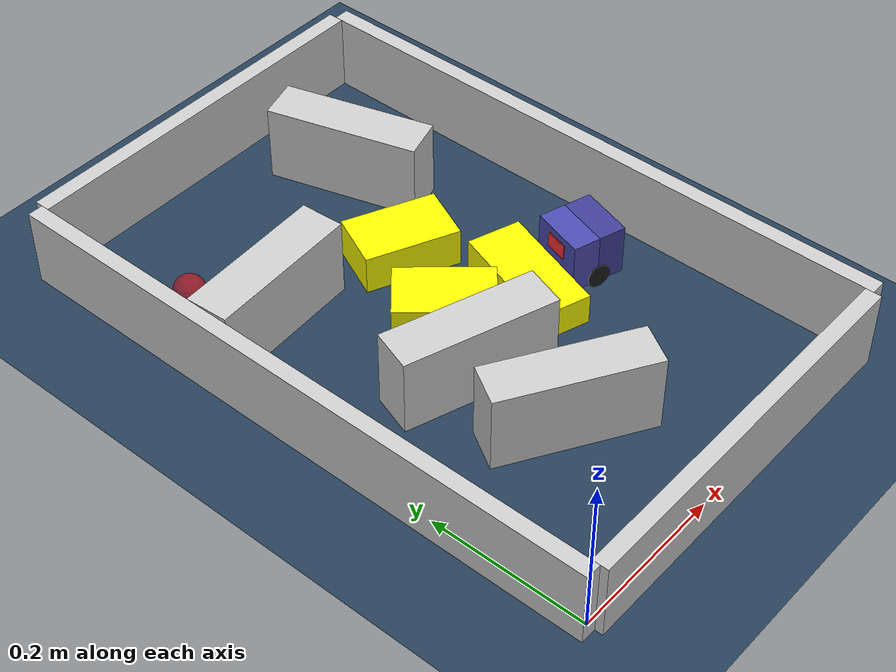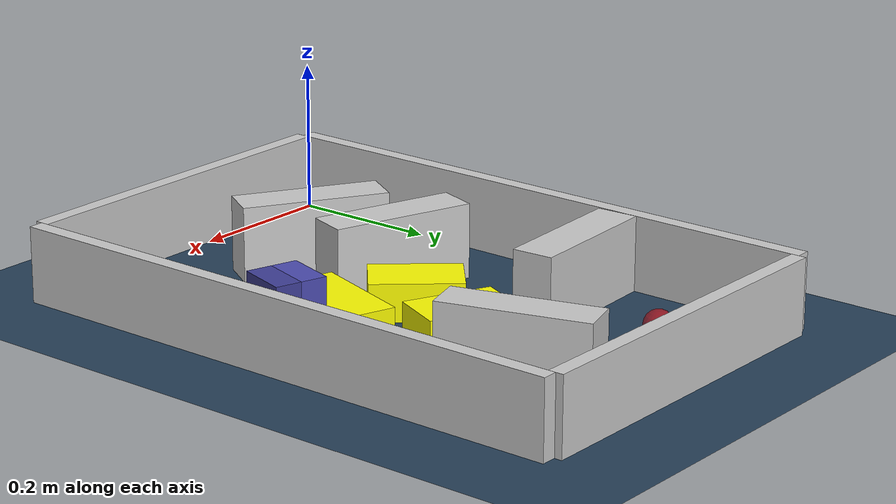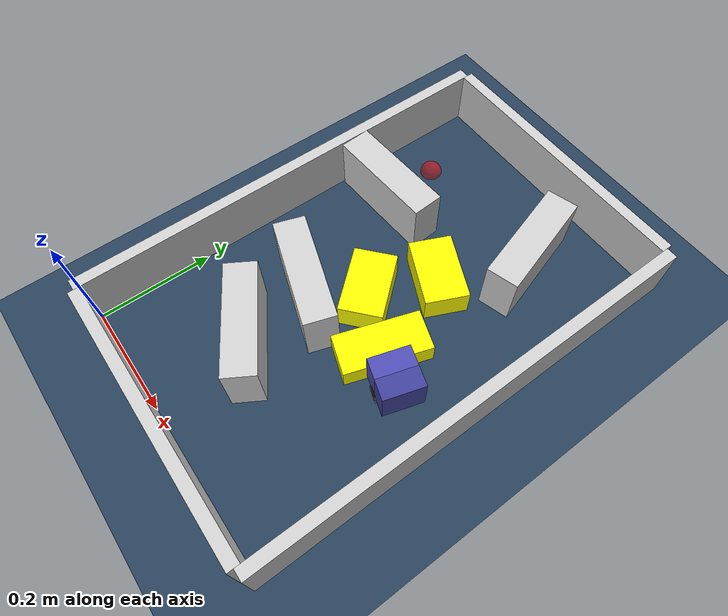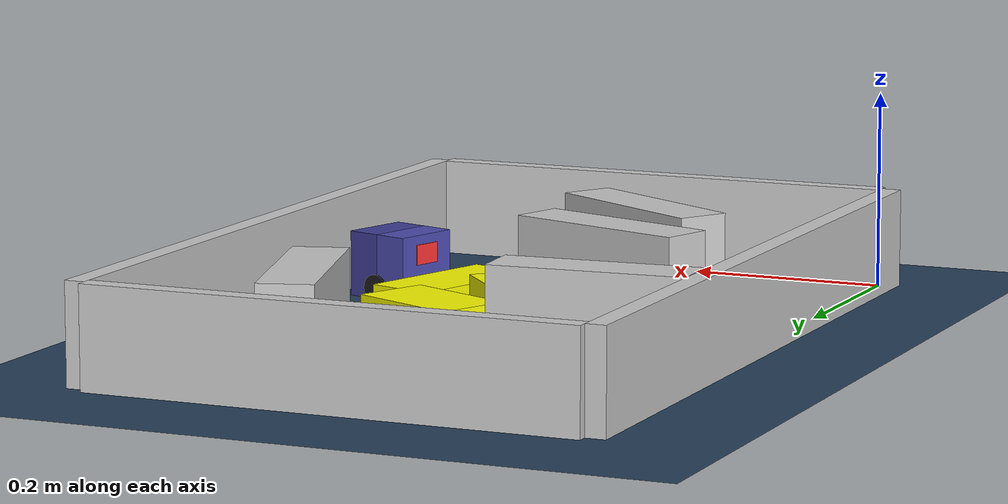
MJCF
<?xml version='1.0' encoding='utf-8'?>
<mujoco model="real_buildable">
  <compiler angle="degree" />
  <option timestep="0.002" integrator="implicitfast" iterations="100" cone="elliptic" />
  <default>
    <geom density="1" />
  </default>
  <asset>
    <texture builtin="gradient" height="3072" rgb1="0.3 0.5 0.7" rgb2="0 0 0" type="skybox" width="512" />
    <texture builtin="checker" height="300" mark="edge" markrgb="0.8 0.8 0.8" name="groundplane" rgb1="0.2 0.3 0.4" rgb2="0.1 0.2 0.3" type="2d" width="300" />
    <material name="groundplane" reflectance="0.2" texrepeat="5 5" texture="groundplane" texuniform="true" />
  </asset>
  <worldbody>
    <light dir="0 0 -1" directional="true" pos="0 0 1.5" />
    <geom name="floor" type="plane" condim="4" friction="0.5 0.005 0.001" material="groundplane" size="0 0 0.05" />
    <body name="walls">
      <geom name="wall_boundary_left" type="box" condim="4" friction="1.0 0.005 0.0001" rgba="0.8 0.8 0.8 1" pos="-0.010000 0.387500 0.050000" euler="0 0 0.000000" size="0.010000 0.397500 0.050000" />
      <geom name="wall_boundary_right" type="box" condim="4" friction="1.0 0.005 0.0001" rgba="0.8 0.8 0.8 1" pos="0.500000 0.387500 0.050000" euler="0 0 0.000000" size="0.010000 0.397500 0.050000" />
      <geom name="wall_boundary_bottom" type="box" condim="4" friction="1.0 0.005 0.0001" rgba="0.8 0.8 0.8 1" pos="0.245000 -0.010000 0.050000" euler="0 0 0.000000" size="0.245000 0.010000 0.050000" />
      <geom name="wall_boundary_top" type="box" condim="4" friction="1.0 0.005 0.0001" rgba="0.8 0.8 0.8 1" pos="0.245000 0.785000 0.050000" euler="0 0 0.000000" size="0.245000 0.010000 0.050000" />
      <geom name="wall_inner_1" type="box" condim="4" friction="1.0 0.005 0.0001" rgba="0.8 0.8 0.8 1" pos="0.191549 0.172272 0.050000" euler="0 0 -31.119121" size="0.097500 0.027500 0.050000" />
      <geom name="wall_inner_2" type="box" condim="4" friction="1.0 0.005 0.0001" rgba="0.8 0.8 0.8 1" pos="0.176347 0.297541 0.050000" euler="0 0 -18.430544" size="0.097500 0.027500 0.050000" />
      <geom name="wall_inner_3" type="box" condim="4" friction="1.0 0.005 0.0001" rgba="0.8 0.8 0.8 1" pos="0.099000 0.526000 0.050000" euler="0 0 3.500000" size="0.097500 0.027500 0.050000" />
      <geom name="wall_inner_4" type="box" condim="4" friction="1.0 0.005 0.0001" rgba="0.8 0.8 0.8 1" pos="0.347000 0.629000 0.050000" euler="0 0 106.600000" size="0.097500 0.027500 0.050000" />
    </body>
    <body name="car" pos="0.39653318728714543 0.31392730598022645 0.01" quat="0.14875305525463034 0 0 0.98887437450487758">
      <freejoint name="car_freejoint" />
      <inertial pos="0 0 0.0375" mass="0.35" diaginertia="0.000266 0.000266 0.000286" />
      <geom name="front_chassis_collision" type="box" pos="0.0175 0 0.0375" size="0.0175 0.035 0.0325" rgba="0.3 0.3 0.7 1" />
      <geom name="rear_chassis_collision" type="box" pos="-0.0175 0 0.0375" size="0.0175 0.035 0.0325" rgba="0.25 0.25 0.6 1" />
      <geom name="front_marker" type="box" pos="0.034 0 0.0505" size="0.002 0.015 0.01" rgba="1 0.2 0.2 1" contype="0" conaffinity="0" />
      <body name="rear_support_body" pos="-0.03 0 0.0025">
        <joint name="rear_caster_joint" type="ball" damping="0.0001" />
        <inertial pos="0 0 0" mass="0.025" diaginertia="0.000001 0.000001 0.000001" />
        <geom name="rear_support" type="sphere" pos="0 0 0" size="0.0025" friction="0 0 0" rgba="0.7 0.1 0.1 1" />
      </body>
      <body name="front_support_body" pos="0.03 0 0.0025">
        <joint name="front_caster_joint" type="ball" damping="0.0001" />
        <inertial pos="0 0 0" mass="0.025" diaginertia="0.000001 0.000001 0.000001" />
        <geom name="front_support" type="sphere" pos="0 0 0" size="0.0025" friction="0 0 0" rgba="0.1 0.7 0.1 1" />
      </body>
      <body name="left_wheel" pos="0 0.0375 0.015">
        <inertial pos="0 0 0" mass="0.05" diaginertia="0.000003 0.000006 0.000003" />
        <joint name="left_wheel_joint" type="hinge" axis="0 1 0" damping="0.01" armature="0.0001" />
        <geom name="left_wheel_collision" type="cylinder" size="0.015 0.0005" euler="90 0 0" rgba="0.1 0.1 0.1 1" />
      </body>
      <body name="right_wheel" pos="0 -0.0375 0.015">
        <inertial pos="0 0 0" mass="0.05" diaginertia="0.000003 0.000006 0.000003" />
        <joint name="right_wheel_joint" type="hinge" axis="0 1 0" damping="0.01" armature="0.0001" />
        <geom name="right_wheel_collision" type="cylinder" size="0.015 0.0005" euler="90 0 0" rgba="0.1 0.1 0.1 1" />
      </body>
    </body>
    <body name="obstacle_0_movable">
      <geom name="obstacle_0_movable" condim="4" pos="0.32953787809267032 0.33795955458338212 0.02" friction="1 0.005 0.0001" rgba="1 1 0 1" size="0.035000 0.075000 0.020000" type="box" mass="0.1" quat="0.16002647819144519 0 0 0.98711272217393842" />
      <joint type="free" />
    </body>
    <body name="obstacle_1_movable">
      <geom name="obstacle_1_movable" condim="4" pos="0.28100000000000097 0.49000000000000077 0.025000000000000001" friction="1 0.005 0.0001" rgba="1 1 0 1" size="0.037500 0.060000 0.025000" type="box" mass="0.1" quat="0.84056660349568435 0 0 0.54170821028273974" />
      <joint type="free" />
    </body>
    <body name="obstacle_2_movable">
      <geom name="obstacle_2_movable" condim="4" pos="0.23251648176013884 0.38109736224198976 0.025000000000000001" friction="1 0.005 0.0001" rgba="1 1 0 1" size="0.037500 0.060000 0.025000" type="box" mass="0.1" quat="0.93653746091475554 0 0 0.3505675174675239" />
      <joint type="free" />
    </body>
    <site name="goal" type="sphere" pos="0.080000 0.640000 0.0" size="0.02" rgba="1 0 0 0.5" />
  </worldbody>
  <actuator>
    <velocity name="left_wheel_drive" joint="left_wheel_joint" ctrlrange="-25 25" kv="0.75" forcerange="-0.5 0.5" />
    <velocity name="right_wheel_drive" joint="right_wheel_joint" ctrlrange="-25 25" kv="0.75" forcerange="-0.5 0.5" />
  </actuator>
</mujoco>
